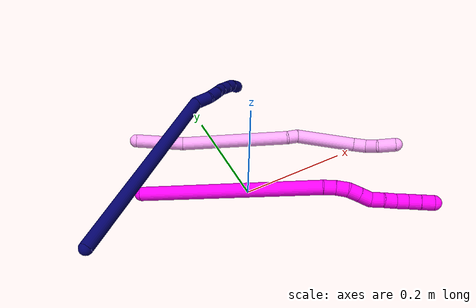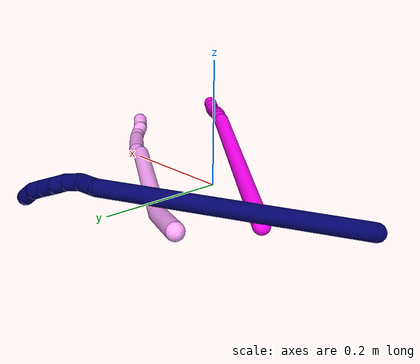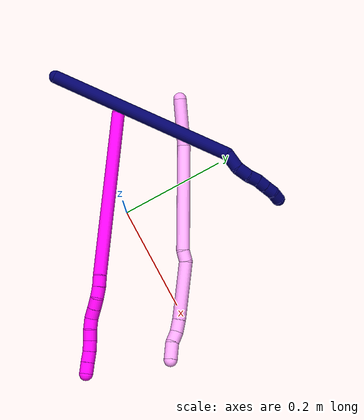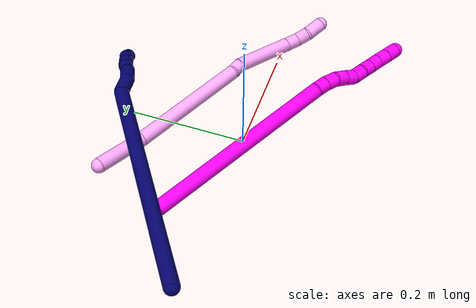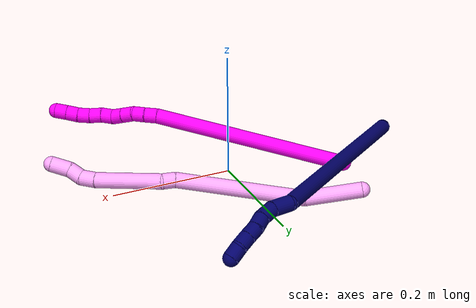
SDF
<sdf version="1.7">
 <world name="default">
  <model name="4">
   <static>0</static>
   <link name="4">
    <collision name="collision-cylinder-e_1_1_4">
     <pose>0.027061 -0.029236 -0.020743 2.18786 0.646628 1.15073</pose>
     <geometry><cylinder><radius>0.0125</radius><length>0.089828</length></cylinder></geometry>
     <surface>
      <friction><ode><mu>1.16</mu><mu2>1.16</mu2><slip1>0</slip1><slip2>0</slip2></ode></friction>
      <contact><ode><kp>1e+06</kp><kd>1</kd><max_vel>0</max_vel><min_depth>0.001</min_depth></ode></contact>
     </surface>
    </collision>
    <visual name="visual-cylinder-e_1_1_4">
     <pose>0.027061 -0.029236 -0.020743 2.18786 0.646628 1.15073</pose>
     <geometry><cylinder><radius>0.0125</radius><length>0.089828</length></cylinder></geometry>
     <material><ambient>1 0.65098 0.996078 1</ambient></material>
    </visual>
    <collision name="collision-cylinder-e_2_4_5">
     <pose>0.115415 -0.103348 -0.109199 2.55633 0.646395 1.67651</pose>
     <geometry><cylinder><radius>0.0125</radius><length>0.203529</length></cylinder></geometry>
     <surface>
      <friction><ode><mu>1.16</mu><mu2>1.16</mu2><slip1>0</slip1><slip2>0</slip2></ode></friction>
      <contact><ode><kp>1e+06</kp><kd>1</kd><max_vel>0</max_vel><min_depth>0.001</min_depth></ode></contact>
     </surface>
    </collision>
    <visual name="visual-cylinder-e_2_4_5">
     <pose>0.115415 -0.103348 -0.109199 2.55633 0.646395 1.67651</pose>
     <geometry><cylinder><radius>0.0125</radius><length>0.203529</length></cylinder></geometry>
     <material><ambient>1 0.65098 0.996078 1</ambient></material>
    </visual>
    <collision name="collision-cylinder-e_3_5_6">
     <pose>0.181151 -0.155236 -0.182867 2.27467 0.449837 0.918215</pose>
     <geometry><cylinder><radius>0.0125</radius><length>0.020429</length></cylinder></geometry>
     <surface>
      <friction><ode><mu>1.16</mu><mu2>1.16</mu2><slip1>0</slip1><slip2>0</slip2></ode></friction>
      <contact><ode><kp>1e+06</kp><kd>1</kd><max_vel>0</max_vel><min_depth>0.001</min_depth></ode></contact>
     </surface>
    </collision>
    <visual name="visual-cylinder-e_3_5_6">
     <pose>0.181151 -0.155236 -0.182867 2.27467 0.449837 0.918215</pose>
     <geometry><cylinder><radius>0.0125</radius><length>0.020429</length></cylinder></geometry>
     <material><ambient>1 0.65098 0.996078 1</ambient></material>
    </visual>
    <collision name="collision-cylinder-e_4_6_7">
     <pose>0.224902 -0.187853 -0.215377 2.37445 0.817122 1.64097</pose>
     <geometry><cylinder><radius>0.0125</radius><length>0.107818</length></cylinder></geometry>
     <surface>
      <friction><ode><mu>1.16</mu><mu2>1.16</mu2><slip1>0</slip1><slip2>0</slip2></ode></friction>
      <contact><ode><kp>1e+06</kp><kd>1</kd><max_vel>0</max_vel><min_depth>0.001</min_depth></ode></contact>
     </surface>
    </collision>
    <visual name="visual-cylinder-e_4_6_7">
     <pose>0.224902 -0.187853 -0.215377 2.37445 0.817122 1.64097</pose>
     <geometry><cylinder><radius>0.0125</radius><length>0.107818</length></cylinder></geometry>
     <material><ambient>1 0.65098 0.996078 1</ambient></material>
    </visual>
    <collision name="collision-cylinder-e_5_7_8">
     <pose>0.273475 -0.21771 -0.248915 2.59457 0.847915 2.0293</pose>
     <geometry><cylinder><radius>0.0125</radius><length>0.024709</length></cylinder></geometry>
     <surface>
      <friction><ode><mu>1.16</mu><mu2>1.16</mu2><slip1>0</slip1><slip2>0</slip2></ode></friction>
      <contact><ode><kp>1e+06</kp><kd>1</kd><max_vel>0</max_vel><min_depth>0.001</min_depth></ode></contact>
     </surface>
    </collision>
    <visual name="visual-cylinder-e_5_7_8">
     <pose>0.273475 -0.21771 -0.248915 2.59457 0.847915 2.0293</pose>
     <geometry><cylinder><radius>0.0125</radius><length>0.024709</length></cylinder></geometry>
     <material><ambient>1 0.65098 0.996078 1</ambient></material>
    </visual>
    <collision name="collision-cylinder-e_6_8_9">
     <pose>0.29034 -0.221708 -0.264193 -3.11113 0.741337 -3.06324</pose>
     <geometry><cylinder><radius>0.0125</radius><length>0.022509</length></cylinder></geometry>
     <surface>
      <friction><ode><mu>1.16</mu><mu2>1.16</mu2><slip1>0</slip1><slip2>0</slip2></ode></friction>
      <contact><ode><kp>1e+06</kp><kd>1</kd><max_vel>0</max_vel><min_depth>0.001</min_depth></ode></contact>
     </surface>
    </collision>
    <visual name="visual-cylinder-e_6_8_9">
     <pose>0.29034 -0.221708 -0.264193 -3.11113 0.741337 -3.06324</pose>
     <geometry><cylinder><radius>0.0125</radius><length>0.022509</length></cylinder></geometry>
     <material><ambient>1 0.65098 0.996078 1</ambient></material>
    </visual>
    <collision name="collision-cylinder-e_7_9_2">
     <pose>0.307447 -0.226246 -0.283878 2.74342 0.655901 2.07109</pose>
     <geometry><cylinder><radius>0.0125</radius><length>0.031178</length></cylinder></geometry>
     <surface>
      <friction><ode><mu>1.16</mu><mu2>1.16</mu2><slip1>0</slip1><slip2>0</slip2></ode></friction>
      <contact><ode><kp>1e+06</kp><kd>1</kd><max_vel>0</max_vel><min_depth>0.001</min_depth></ode></contact>
     </surface>
    </collision>
    <visual name="visual-cylinder-e_7_9_2">
     <pose>0.307447 -0.226246 -0.283878 2.74342 0.655901 2.07109</pose>
     <geometry><cylinder><radius>0.0125</radius><length>0.031178</length></cylinder></geometry>
     <material><ambient>1 0.65098 0.996078 1</ambient></material>
    </visual>
    <collision name="collision-sphere-2">
     <pose>0.316954 -0.231036 -0.295266 0 -0 0</pose>
     <geometry><sphere><radius>0.0125</radius></sphere></geometry>
     <surface>
      <friction><ode><mu>1.16</mu><mu2>1.16</mu2><slip1>0</slip1><slip2>0</slip2></ode></friction>
      <contact><ode><kp>1e+06</kp><kd>1</kd><max_vel>0</max_vel><min_depth>0.001</min_depth></ode></contact>
     </surface>
    </collision>
    <visual name="visual-sphere-2">
     <pose>0.316954 -0.231036 -0.295266 0 -0 0</pose>
     <geometry><sphere><radius>0.0125</radius></sphere></geometry>
     <material><ambient>1 0.65098 0.996078 1</ambient></material>
    </visual>
    <collision name="collision-sphere-9">
     <pose>0.297939 -0.221456 -0.27249 0 -0 0</pose>
     <geometry><sphere><radius>0.0125</radius></sphere></geometry>
     <surface>
      <friction><ode><mu>1.16</mu><mu2>1.16</mu2><slip1>0</slip1><slip2>0</slip2></ode></friction>
      <contact><ode><kp>1e+06</kp><kd>1</kd><max_vel>0</max_vel><min_depth>0.001</min_depth></ode></contact>
     </surface>
    </collision>
    <visual name="visual-sphere-9">
     <pose>0.297939 -0.221456 -0.27249 0 -0 0</pose>
     <geometry><sphere><radius>0.0125</radius></sphere></geometry>
     <material><ambient>1 0.65098 0.996078 1</ambient></material>
    </visual>
    <collision name="collision-sphere-4">
     <pose>0.054121 -0.058472 -0.041485 0 -0 0</pose>
     <geometry><sphere><radius>0.0125</radius></sphere></geometry>
     <surface>
      <friction><ode><mu>1.16</mu><mu2>1.16</mu2><slip1>0</slip1><slip2>0</slip2></ode></friction>
      <contact><ode><kp>1e+06</kp><kd>1</kd><max_vel>0</max_vel><min_depth>0.001</min_depth></ode></contact>
     </surface>
    </collision>
    <visual name="visual-sphere-4">
     <pose>0.054121 -0.058472 -0.041485 0 -0 0</pose>
     <geometry><sphere><radius>0.0125</radius></sphere></geometry>
     <material><ambient>1 0.65098 0.996078 1</ambient></material>
    </visual>
    <collision name="collision-sphere-1">
     <geometry><sphere><radius>0.0125</radius></sphere></geometry>
     <surface>
      <friction><ode><mu>1.16</mu><mu2>1.16</mu2><slip1>0</slip1><slip2>0</slip2></ode></friction>
      <contact><ode><kp>1e+06</kp><kd>1</kd><max_vel>0</max_vel><min_depth>0.001</min_depth></ode></contact>
     </surface>
    </collision>
    <visual name="visual-sphere-1">
     <geometry><sphere><radius>0.0125</radius></sphere></geometry>
     <material><ambient>1 0.65098 0.996078 1</ambient></material>
    </visual>
    <collision name="collision-sphere-8">
     <pose>0.28274 -0.221961 -0.255896 0 -0 0</pose>
     <geometry><sphere><radius>0.0125</radius></sphere></geometry>
     <surface>
      <friction><ode><mu>1.16</mu><mu2>1.16</mu2><slip1>0</slip1><slip2>0</slip2></ode></friction>
      <contact><ode><kp>1e+06</kp><kd>1</kd><max_vel>0</max_vel><min_depth>0.001</min_depth></ode></contact>
     </surface>
    </collision>
    <visual name="visual-sphere-8">
     <pose>0.28274 -0.221961 -0.255896 0 -0 0</pose>
     <geometry><sphere><radius>0.0125</radius></sphere></geometry>
     <material><ambient>1 0.65098 0.996078 1</ambient></material>
    </visual>
    <collision name="collision-sphere-5">
     <pose>0.176709 -0.148223 -0.176914 0 -0 0</pose>
     <geometry><sphere><radius>0.0125</radius></sphere></geometry>
     <surface>
      <friction><ode><mu>1.16</mu><mu2>1.16</mu2><slip1>0</slip1><slip2>0</slip2></ode></friction>
      <contact><ode><kp>1e+06</kp><kd>1</kd><max_vel>0</max_vel><min_depth>0.001</min_depth></ode></contact>
     </surface>
    </collision>
    <visual name="visual-sphere-5">
     <pose>0.176709 -0.148223 -0.176914 0 -0 0</pose>
     <geometry><sphere><radius>0.0125</radius></sphere></geometry>
     <material><ambient>1 0.65098 0.996078 1</ambient></material>
    </visual>
    <collision name="collision-sphere-6">
     <pose>0.185592 -0.162248 -0.18882 0 -0 0</pose>
     <geometry><sphere><radius>0.0125</radius></sphere></geometry>
     <surface>
      <friction><ode><mu>1.16</mu><mu2>1.16</mu2><slip1>0</slip1><slip2>0</slip2></ode></friction>
      <contact><ode><kp>1e+06</kp><kd>1</kd><max_vel>0</max_vel><min_depth>0.001</min_depth></ode></contact>
     </surface>
    </collision>
    <visual name="visual-sphere-6">
     <pose>0.185592 -0.162248 -0.18882 0 -0 0</pose>
     <geometry><sphere><radius>0.0125</radius></sphere></geometry>
     <material><ambient>1 0.65098 0.996078 1</ambient></material>
    </visual>
    <collision name="collision-sphere-7">
     <pose>0.264211 -0.213459 -0.241935 0 -0 0</pose>
     <geometry><sphere><radius>0.0125</radius></sphere></geometry>
     <surface>
      <friction><ode><mu>1.16</mu><mu2>1.16</mu2><slip1>0</slip1><slip2>0</slip2></ode></friction>
      <contact><ode><kp>1e+06</kp><kd>1</kd><max_vel>0</max_vel><min_depth>0.001</min_depth></ode></contact>
     </surface>
    </collision>
    <visual name="visual-sphere-7">
     <pose>0.264211 -0.213459 -0.241935 0 -0 0</pose>
     <geometry><sphere><radius>0.0125</radius></sphere></geometry>
     <material><ambient>1 0.65098 0.996078 1</ambient></material>
    </visual>
    <inertial>
     <pose>0.153497 -0.129019 -0.143987 0 -0 0</pose>
     <mass>0.5</mass>
     <inertia>
      <ixx>0.000668</ixx>
      <ixy>0</ixy>
      <ixz>0</ixz>
      <iyy>0.001049</iyy>
      <iyz>0</iyz>
      <izz>-0.000165</izz>
     </inertia>
    </inertial>
   </link>
   <pose>-0.141067 0.192479 0.026305 2.546 0.286493 -1.35188</pose>
  </model>
  <model name="7">
   <static>0</static>
   <link name="7">
    <collision name="collision-cylinder-e_1_1_4">
     <pose>0.064407 0.07509 -0.151638 -2.6818 0.363696 -1.33191</pose>
     <geometry><cylinder><radius>0.0125</radius><length>0.36211</length></cylinder></geometry>
     <surface>
      <friction><ode><mu>1.16</mu><mu2>1.16</mu2><slip1>0</slip1><slip2>0</slip2></ode></friction>
      <contact><ode><kp>1e+06</kp><kd>1</kd><max_vel>0</max_vel><min_depth>0.001</min_depth></ode></contact>
     </surface>
    </collision>
    <visual name="visual-cylinder-e_1_1_4">
     <pose>0.064407 0.07509 -0.151638 -2.6818 0.363696 -1.33191</pose>
     <geometry><cylinder><radius>0.0125</radius><length>0.36211</length></cylinder></geometry>
     <material><ambient>0.003922 0 0.403922 1</ambient></material>
    </visual>
    <collision name="collision-cylinder-e_2_4_5">
     <pose>0.140977 0.156523 -0.311574 -2.48903 0.861265 -1.87187</pose>
     <geometry><cylinder><radius>0.0125</radius><length>0.032065</length></cylinder></geometry>
     <surface>
      <friction><ode><mu>1.16</mu><mu2>1.16</mu2><slip1>0</slip1><slip2>0</slip2></ode></friction>
      <contact><ode><kp>1e+06</kp><kd>1</kd><max_vel>0</max_vel><min_depth>0.001</min_depth></ode></contact>
     </surface>
    </collision>
    <visual name="visual-cylinder-e_2_4_5">
     <pose>0.140977 0.156523 -0.311574 -2.48903 0.861265 -1.87187</pose>
     <geometry><cylinder><radius>0.0125</radius><length>0.032065</length></cylinder></geometry>
     <material><ambient>0.003922 0 0.403922 1</ambient></material>
    </visual>
    <collision name="collision-cylinder-e_3_5_6">
     <pose>0.160393 0.165926 -0.329991 -2.8479 0.601369 -2.25145</pose>
     <geometry><cylinder><radius>0.0125</radius><length>0.02564</length></cylinder></geometry>
     <surface>
      <friction><ode><mu>1.16</mu><mu2>1.16</mu2><slip1>0</slip1><slip2>0</slip2></ode></friction>
      <contact><ode><kp>1e+06</kp><kd>1</kd><max_vel>0</max_vel><min_depth>0.001</min_depth></ode></contact>
     </surface>
    </collision>
    <visual name="visual-cylinder-e_3_5_6">
     <pose>0.160393 0.165926 -0.329991 -2.8479 0.601369 -2.25145</pose>
     <geometry><cylinder><radius>0.0125</radius><length>0.02564</length></cylinder></geometry>
     <material><ambient>0.003922 0 0.403922 1</ambient></material>
    </visual>
    <collision name="collision-cylinder-e_4_6_7">
     <pose>0.171999 0.169355 -0.34916 -3.10085 0.447946 -2.9632</pose>
     <geometry><cylinder><radius>0.0125</radius><length>0.020098</length></cylinder></geometry>
     <surface>
      <friction><ode><mu>1.16</mu><mu2>1.16</mu2><slip1>0</slip1><slip2>0</slip2></ode></friction>
      <contact><ode><kp>1e+06</kp><kd>1</kd><max_vel>0</max_vel><min_depth>0.001</min_depth></ode></contact>
     </surface>
    </collision>
    <visual name="visual-cylinder-e_4_6_7">
     <pose>0.171999 0.169355 -0.34916 -3.10085 0.447946 -2.9632</pose>
     <geometry><cylinder><radius>0.0125</radius><length>0.020098</length></cylinder></geometry>
     <material><ambient>0.003922 0 0.403922 1</ambient></material>
    </visual>
    <collision name="collision-cylinder-e_5_7_8">
     <pose>0.182534 0.170332 -0.366048 -3.06416 0.666434 -2.91869</pose>
     <geometry><cylinder><radius>0.0125</radius><length>0.020003</length></cylinder></geometry>
     <surface>
      <friction><ode><mu>1.16</mu><mu2>1.16</mu2><slip1>0</slip1><slip2>0</slip2></ode></friction>
      <contact><ode><kp>1e+06</kp><kd>1</kd><max_vel>0</max_vel><min_depth>0.001</min_depth></ode></contact>
     </surface>
    </collision>
    <visual name="visual-cylinder-e_5_7_8">
     <pose>0.182534 0.170332 -0.366048 -3.06416 0.666434 -2.91869</pose>
     <geometry><cylinder><radius>0.0125</radius><length>0.020003</length></cylinder></geometry>
     <material><ambient>0.003922 0 0.403922 1</ambient></material>
    </visual>
    <collision name="collision-cylinder-e_6_8_9">
     <pose>0.194747 0.171206 -0.381895 -3.10835 0.645113 -3.0422</pose>
     <geometry><cylinder><radius>0.0125</radius><length>0.020057</length></cylinder></geometry>
     <surface>
      <friction><ode><mu>1.16</mu><mu2>1.16</mu2><slip1>0</slip1><slip2>0</slip2></ode></friction>
      <contact><ode><kp>1e+06</kp><kd>1</kd><max_vel>0</max_vel><min_depth>0.001</min_depth></ode></contact>
     </surface>
    </collision>
    <visual name="visual-cylinder-e_6_8_9">
     <pose>0.194747 0.171206 -0.381895 -3.10835 0.645113 -3.0422</pose>
     <geometry><cylinder><radius>0.0125</radius><length>0.020057</length></cylinder></geometry>
     <material><ambient>0.003922 0 0.403922 1</ambient></material>
    </visual>
    <collision name="collision-cylinder-e_7_9_2">
     <pose>0.207925 0.169062 -0.396489 2.79066 0.794957 2.34243</pose>
     <geometry><cylinder><radius>0.0125</radius><length>0.020027</length></cylinder></geometry>
     <surface>
      <friction><ode><mu>1.16</mu><mu2>1.16</mu2><slip1>0</slip1><slip2>0</slip2></ode></friction>
      <contact><ode><kp>1e+06</kp><kd>1</kd><max_vel>0</max_vel><min_depth>0.001</min_depth></ode></contact>
     </surface>
    </collision>
    <visual name="visual-cylinder-e_7_9_2">
     <pose>0.207925 0.169062 -0.396489 2.79066 0.794957 2.34243</pose>
     <geometry><cylinder><radius>0.0125</radius><length>0.020027</length></cylinder></geometry>
     <material><ambient>0.003922 0 0.403922 1</ambient></material>
    </visual>
    <collision name="collision-sphere-2">
     <pose>0.215073 0.166651 -0.403074 0 -0 0</pose>
     <geometry><sphere><radius>0.0125</radius></sphere></geometry>
     <surface>
      <friction><ode><mu>1.16</mu><mu2>1.16</mu2><slip1>0</slip1><slip2>0</slip2></ode></friction>
      <contact><ode><kp>1e+06</kp><kd>1</kd><max_vel>0</max_vel><min_depth>0.001</min_depth></ode></contact>
     </surface>
    </collision>
    <visual name="visual-sphere-2">
     <pose>0.215073 0.166651 -0.403074 0 -0 0</pose>
     <geometry><sphere><radius>0.0125</radius></sphere></geometry>
     <material><ambient>0.003922 0 0.403922 1</ambient></material>
    </visual>
    <collision name="collision-sphere-9">
     <pose>0.200778 0.171473 -0.389904 0 -0 0</pose>
     <geometry><sphere><radius>0.0125</radius></sphere></geometry>
     <surface>
      <friction><ode><mu>1.16</mu><mu2>1.16</mu2><slip1>0</slip1><slip2>0</slip2></ode></friction>
      <contact><ode><kp>1e+06</kp><kd>1</kd><max_vel>0</max_vel><min_depth>0.001</min_depth></ode></contact>
     </surface>
    </collision>
    <visual name="visual-sphere-9">
     <pose>0.200778 0.171473 -0.389904 0 -0 0</pose>
     <geometry><sphere><radius>0.0125</radius></sphere></geometry>
     <material><ambient>0.003922 0 0.403922 1</ambient></material>
    </visual>
    <collision name="collision-sphere-4">
     <pose>0.128814 0.150181 -0.303276 0 -0 0</pose>
     <geometry><sphere><radius>0.0125</radius></sphere></geometry>
     <surface>
      <friction><ode><mu>1.16</mu><mu2>1.16</mu2><slip1>0</slip1><slip2>0</slip2></ode></friction>
      <contact><ode><kp>1e+06</kp><kd>1</kd><max_vel>0</max_vel><min_depth>0.001</min_depth></ode></contact>
     </surface>
    </collision>
    <visual name="visual-sphere-4">
     <pose>0.128814 0.150181 -0.303276 0 -0 0</pose>
     <geometry><sphere><radius>0.0125</radius></sphere></geometry>
     <material><ambient>0.003922 0 0.403922 1</ambient></material>
    </visual>
    <collision name="collision-sphere-1">
     <geometry><sphere><radius>0.0125</radius></sphere></geometry>
     <surface>
      <friction><ode><mu>1.16</mu><mu2>1.16</mu2><slip1>0</slip1><slip2>0</slip2></ode></friction>
      <contact><ode><kp>1e+06</kp><kd>1</kd><max_vel>0</max_vel><min_depth>0.001</min_depth></ode></contact>
     </surface>
    </collision>
    <visual name="visual-sphere-1">
     <geometry><sphere><radius>0.0125</radius></sphere></geometry>
     <material><ambient>0.003922 0 0.403922 1</ambient></material>
    </visual>
    <collision name="collision-sphere-8">
     <pose>0.188717 0.17094 -0.373886 0 -0 0</pose>
     <geometry><sphere><radius>0.0125</radius></sphere></geometry>
     <surface>
      <friction><ode><mu>1.16</mu><mu2>1.16</mu2><slip1>0</slip1><slip2>0</slip2></ode></friction>
      <contact><ode><kp>1e+06</kp><kd>1</kd><max_vel>0</max_vel><min_depth>0.001</min_depth></ode></contact>
     </surface>
    </collision>
    <visual name="visual-sphere-8">
     <pose>0.188717 0.17094 -0.373886 0 -0 0</pose>
     <geometry><sphere><radius>0.0125</radius></sphere></geometry>
     <material><ambient>0.003922 0 0.403922 1</ambient></material>
    </visual>
    <collision name="collision-sphere-5">
     <pose>0.15314 0.162866 -0.319873 0 -0 0</pose>
     <geometry><sphere><radius>0.0125</radius></sphere></geometry>
     <surface>
      <friction><ode><mu>1.16</mu><mu2>1.16</mu2><slip1>0</slip1><slip2>0</slip2></ode></friction>
      <contact><ode><kp>1e+06</kp><kd>1</kd><max_vel>0</max_vel><min_depth>0.001</min_depth></ode></contact>
     </surface>
    </collision>
    <visual name="visual-sphere-5">
     <pose>0.15314 0.162866 -0.319873 0 -0 0</pose>
     <geometry><sphere><radius>0.0125</radius></sphere></geometry>
     <material><ambient>0.003922 0 0.403922 1</ambient></material>
    </visual>
    <collision name="collision-sphere-6">
     <pose>0.167647 0.168986 -0.34011 0 -0 0</pose>
     <geometry><sphere><radius>0.0125</radius></sphere></geometry>
     <surface>
      <friction><ode><mu>1.16</mu><mu2>1.16</mu2><slip1>0</slip1><slip2>0</slip2></ode></friction>
      <contact><ode><kp>1e+06</kp><kd>1</kd><max_vel>0</max_vel><min_depth>0.001</min_depth></ode></contact>
     </surface>
    </collision>
    <visual name="visual-sphere-6">
     <pose>0.167647 0.168986 -0.34011 0 -0 0</pose>
     <geometry><sphere><radius>0.0125</radius></sphere></geometry>
     <material><ambient>0.003922 0 0.403922 1</ambient></material>
    </visual>
    <collision name="collision-sphere-7">
     <pose>0.176351 0.169724 -0.35821 0 -0 0</pose>
     <geometry><sphere><radius>0.0125</radius></sphere></geometry>
     <surface>
      <friction><ode><mu>1.16</mu><mu2>1.16</mu2><slip1>0</slip1><slip2>0</slip2></ode></friction>
      <contact><ode><kp>1e+06</kp><kd>1</kd><max_vel>0</max_vel><min_depth>0.001</min_depth></ode></contact>
     </surface>
    </collision>
    <visual name="visual-sphere-7">
     <pose>0.176351 0.169724 -0.35821 0 -0 0</pose>
     <geometry><sphere><radius>0.0125</radius></sphere></geometry>
     <material><ambient>0.003922 0 0.403922 1</ambient></material>
    </visual>
    <inertial>
     <pose>0.094267 0.10019 -0.206602 0 -0 0</pose>
     <mass>0.5</mass>
     <inertia>
      <ixx>-0.002721</ixx>
      <ixy>0</ixy>
      <ixz>0</ixz>
      <iyy>-0.00382</iyy>
      <iyz>0</iyz>
      <izz>-0.003101</izz>
     </inertia>
    </inertial>
   </link>
   <pose>-0.294036 0.004027 0.023033 1.32974 0.347409 -0.523331</pose>
  </model>
  <model name="10">
   <static>0</static>
   <link name="10">
    <collision name="collision-cylinder-e_1_1_4">
     <pose>-0.01246 -0.022015 0.157911 0.138521 -0.077992 -0.005413</pose>
     <geometry><cylinder><radius>0.0125</radius><length>0.319849</length></cylinder></geometry>
     <surface>
      <friction><ode><mu>1.16</mu><mu2>1.16</mu2><slip1>0</slip1><slip2>0</slip2></ode></friction>
      <contact><ode><kp>1e+06</kp><kd>1</kd><max_vel>0</max_vel><min_depth>0.001</min_depth></ode></contact>
     </surface>
    </collision>
    <visual name="visual-cylinder-e_1_1_4">
     <pose>-0.01246 -0.022015 0.157911 0.138521 -0.077992 -0.005413</pose>
     <geometry><cylinder><radius>0.0125</radius><length>0.319849</length></cylinder></geometry>
     <material><ambient>1 0 0.964706 1</ambient></material>
    </visual>
    <collision name="collision-cylinder-e_2_4_5">
     <pose>-0.024798 -0.044041 0.325882 0.001099 0.012176 7e-06</pose>
     <geometry><cylinder><radius>0.0125</radius><length>0.020121</length></cylinder></geometry>
     <surface>
      <friction><ode><mu>1.16</mu><mu2>1.16</mu2><slip1>0</slip1><slip2>0</slip2></ode></friction>
      <contact><ode><kp>1e+06</kp><kd>1</kd><max_vel>0</max_vel><min_depth>0.001</min_depth></ode></contact>
     </surface>
    </collision>
    <visual name="visual-cylinder-e_2_4_5">
     <pose>-0.024798 -0.044041 0.325882 0.001099 0.012176 7e-06</pose>
     <geometry><cylinder><radius>0.0125</radius><length>0.020121</length></cylinder></geometry>
     <material><ambient>1 0 0.964706 1</ambient></material>
    </visual>
    <collision name="collision-cylinder-e_3_5_6">
     <pose>-0.023364 -0.044741 0.345846 0.069494 0.131296 0.004571</pose>
     <geometry><cylinder><radius>0.0125</radius><length>0.020029</length></cylinder></geometry>
     <surface>
      <friction><ode><mu>1.16</mu><mu2>1.16</mu2><slip1>0</slip1><slip2>0</slip2></ode></friction>
      <contact><ode><kp>1e+06</kp><kd>1</kd><max_vel>0</max_vel><min_depth>0.001</min_depth></ode></contact>
     </surface>
    </collision>
    <visual name="visual-cylinder-e_3_5_6">
     <pose>-0.023364 -0.044741 0.345846 0.069494 0.131296 0.004571</pose>
     <geometry><cylinder><radius>0.0125</radius><length>0.020029</length></cylinder></geometry>
     <material><ambient>1 0 0.964706 1</ambient></material>
    </visual>
    <collision name="collision-cylinder-e_4_6_7">
     <pose>-0.018259 -0.044621 0.364967 -0.087621 0.389115 -0.017276</pose>
     <geometry><cylinder><radius>0.0125</radius><length>0.020001</length></cylinder></geometry>
     <surface>
      <friction><ode><mu>1.16</mu><mu2>1.16</mu2><slip1>0</slip1><slip2>0</slip2></ode></friction>
      <contact><ode><kp>1e+06</kp><kd>1</kd><max_vel>0</max_vel><min_depth>0.001</min_depth></ode></contact>
     </surface>
    </collision>
    <visual name="visual-cylinder-e_4_6_7">
     <pose>-0.018259 -0.044621 0.364967 -0.087621 0.389115 -0.017276</pose>
     <geometry><cylinder><radius>0.0125</radius><length>0.020001</length></cylinder></geometry>
     <material><ambient>1 0 0.964706 1</ambient></material>
    </visual>
    <collision name="collision-cylinder-e_5_7_8">
     <pose>-0.010376 -0.043163 0.383287 -0.071156 0.421333 -0.015222</pose>
     <geometry><cylinder><radius>0.0125</radius><length>0.02</length></cylinder></geometry>
     <surface>
      <friction><ode><mu>1.16</mu><mu2>1.16</mu2><slip1>0</slip1><slip2>0</slip2></ode></friction>
      <contact><ode><kp>1e+06</kp><kd>1</kd><max_vel>0</max_vel><min_depth>0.001</min_depth></ode></contact>
     </surface>
    </collision>
    <visual name="visual-cylinder-e_5_7_8">
     <pose>-0.010376 -0.043163 0.383287 -0.071156 0.421333 -0.015222</pose>
     <geometry><cylinder><radius>0.0125</radius><length>0.02</length></cylinder></geometry>
     <material><ambient>1 0 0.964706 1</ambient></material>
    </visual>
    <collision name="collision-cylinder-e_6_8_9">
     <pose>-0.006264 -0.043204 0.402366 0.069082 0.002214 7.6e-05</pose>
     <geometry><cylinder><radius>0.0125</radius><length>0.02</length></cylinder></geometry>
     <surface>
      <friction><ode><mu>1.16</mu><mu2>1.16</mu2><slip1>0</slip1><slip2>0</slip2></ode></friction>
      <contact><ode><kp>1e+06</kp><kd>1</kd><max_vel>0</max_vel><min_depth>0.001</min_depth></ode></contact>
     </surface>
    </collision>
    <visual name="visual-cylinder-e_6_8_9">
     <pose>-0.006264 -0.043204 0.402366 0.069082 0.002214 7.6e-05</pose>
     <geometry><cylinder><radius>0.0125</radius><length>0.02</length></cylinder></geometry>
     <material><ambient>1 0 0.964706 1</ambient></material>
    </visual>
    <collision name="collision-cylinder-e_7_9_10">
     <pose>-0.00546 -0.042544 0.42222 -0.135897 0.07821 -0.005325</pose>
     <geometry><cylinder><radius>0.0125</radius><length>0.02</length></cylinder></geometry>
     <surface>
      <friction><ode><mu>1.16</mu><mu2>1.16</mu2><slip1>0</slip1><slip2>0</slip2></ode></friction>
      <contact><ode><kp>1e+06</kp><kd>1</kd><max_vel>0</max_vel><min_depth>0.001</min_depth></ode></contact>
     </surface>
    </collision>
    <visual name="visual-cylinder-e_7_9_10">
     <pose>-0.00546 -0.042544 0.42222 -0.135897 0.07821 -0.005325</pose>
     <geometry><cylinder><radius>0.0125</radius><length>0.02</length></cylinder></geometry>
     <material><ambient>1 0 0.964706 1</ambient></material>
    </visual>
    <collision name="collision-cylinder-e_8_10_11">
     <pose>-0.004518 -0.040991 0.442094 -0.02023 0.016071 -0.000163</pose>
     <geometry><cylinder><radius>0.0125</radius><length>0.02</length></cylinder></geometry>
     <surface>
      <friction><ode><mu>1.16</mu><mu2>1.16</mu2><slip1>0</slip1><slip2>0</slip2></ode></friction>
      <contact><ode><kp>1e+06</kp><kd>1</kd><max_vel>0</max_vel><min_depth>0.001</min_depth></ode></contact>
     </surface>
    </collision>
    <visual name="visual-cylinder-e_8_10_11">
     <pose>-0.004518 -0.040991 0.442094 -0.02023 0.016071 -0.000163</pose>
     <geometry><cylinder><radius>0.0125</radius><length>0.02</length></cylinder></geometry>
     <material><ambient>1 0 0.964706 1</ambient></material>
    </visual>
    <collision name="collision-cylinder-e_9_11_12">
     <pose>-0.004218 -0.042085 0.462005 0.13001 0.013925 0.000906</pose>
     <geometry><cylinder><radius>0.0125</radius><length>0.02</length></cylinder></geometry>
     <surface>
      <friction><ode><mu>1.16</mu><mu2>1.16</mu2><slip1>0</slip1><slip2>0</slip2></ode></friction>
      <contact><ode><kp>1e+06</kp><kd>1</kd><max_vel>0</max_vel><min_depth>0.001</min_depth></ode></contact>
     </surface>
    </collision>
    <visual name="visual-cylinder-e_9_11_12">
     <pose>-0.004218 -0.042085 0.462005 0.13001 0.013925 0.000906</pose>
     <geometry><cylinder><radius>0.0125</radius><length>0.02</length></cylinder></geometry>
     <material><ambient>1 0 0.964706 1</ambient></material>
    </visual>
    <collision name="collision-cylinder-e_10_12_2">
     <pose>-0.004014 -0.044324 0.481875 0.094396 0.006494 0.000307</pose>
     <geometry><cylinder><radius>0.0125</radius><length>0.02</length></cylinder></geometry>
     <surface>
      <friction><ode><mu>1.16</mu><mu2>1.16</mu2><slip1>0</slip1><slip2>0</slip2></ode></friction>
      <contact><ode><kp>1e+06</kp><kd>1</kd><max_vel>0</max_vel><min_depth>0.001</min_depth></ode></contact>
     </surface>
    </collision>
    <visual name="visual-cylinder-e_10_12_2">
     <pose>-0.004014 -0.044324 0.481875 0.094396 0.006494 0.000307</pose>
     <geometry><cylinder><radius>0.0125</radius><length>0.02</length></cylinder></geometry>
     <material><ambient>1 0 0.964706 1</ambient></material>
    </visual>
    <collision name="collision-sphere-2">
     <pose>-0.003949 -0.045266 0.49183 0 -0 0</pose>
     <geometry><sphere><radius>0.0125</radius></sphere></geometry>
     <surface>
      <friction><ode><mu>1.16</mu><mu2>1.16</mu2><slip1>0</slip1><slip2>0</slip2></ode></friction>
      <contact><ode><kp>1e+06</kp><kd>1</kd><max_vel>0</max_vel><min_depth>0.001</min_depth></ode></contact>
     </surface>
    </collision>
    <visual name="visual-sphere-2">
     <pose>-0.003949 -0.045266 0.49183 0 -0 0</pose>
     <geometry><sphere><radius>0.0125</radius></sphere></geometry>
     <material><ambient>1 0 0.964706 1</ambient></material>
    </visual>
    <collision name="collision-sphere-12">
     <pose>-0.004079 -0.043381 0.47192 0 -0 0</pose>
     <geometry><sphere><radius>0.0125</radius></sphere></geometry>
     <surface>
      <friction><ode><mu>1.16</mu><mu2>1.16</mu2><slip1>0</slip1><slip2>0</slip2></ode></friction>
      <contact><ode><kp>1e+06</kp><kd>1</kd><max_vel>0</max_vel><min_depth>0.001</min_depth></ode></contact>
     </surface>
    </collision>
    <visual name="visual-sphere-12">
     <pose>-0.004079 -0.043381 0.47192 0 -0 0</pose>
     <geometry><sphere><radius>0.0125</radius></sphere></geometry>
     <material><ambient>1 0 0.964706 1</ambient></material>
    </visual>
    <collision name="collision-sphere-11">
     <pose>-0.004358 -0.040789 0.45209 0 -0 0</pose>
     <geometry><sphere><radius>0.0125</radius></sphere></geometry>
     <surface>
      <friction><ode><mu>1.16</mu><mu2>1.16</mu2><slip1>0</slip1><slip2>0</slip2></ode></friction>
      <contact><ode><kp>1e+06</kp><kd>1</kd><max_vel>0</max_vel><min_depth>0.001</min_depth></ode></contact>
     </surface>
    </collision>
    <visual name="visual-sphere-11">
     <pose>-0.004358 -0.040789 0.45209 0 -0 0</pose>
     <geometry><sphere><radius>0.0125</radius></sphere></geometry>
     <material><ambient>1 0 0.964706 1</ambient></material>
    </visual>
    <collision name="collision-sphere-10">
     <pose>-0.004679 -0.041193 0.432097 0 -0 0</pose>
     <geometry><sphere><radius>0.0125</radius></sphere></geometry>
     <surface>
      <friction><ode><mu>1.16</mu><mu2>1.16</mu2><slip1>0</slip1><slip2>0</slip2></ode></friction>
      <contact><ode><kp>1e+06</kp><kd>1</kd><max_vel>0</max_vel><min_depth>0.001</min_depth></ode></contact>
     </surface>
    </collision>
    <visual name="visual-sphere-10">
     <pose>-0.004679 -0.041193 0.432097 0 -0 0</pose>
     <geometry><sphere><radius>0.0125</radius></sphere></geometry>
     <material><ambient>1 0 0.964706 1</ambient></material>
    </visual>
    <collision name="collision-sphere-9">
     <pose>-0.006242 -0.043894 0.412342 0 -0 0</pose>
     <geometry><sphere><radius>0.0125</radius></sphere></geometry>
     <surface>
      <friction><ode><mu>1.16</mu><mu2>1.16</mu2><slip1>0</slip1><slip2>0</slip2></ode></friction>
      <contact><ode><kp>1e+06</kp><kd>1</kd><max_vel>0</max_vel><min_depth>0.001</min_depth></ode></contact>
     </surface>
    </collision>
    <visual name="visual-sphere-9">
     <pose>-0.006242 -0.043894 0.412342 0 -0 0</pose>
     <geometry><sphere><radius>0.0125</radius></sphere></geometry>
     <material><ambient>1 0 0.964706 1</ambient></material>
    </visual>
    <collision name="collision-sphere-4">
     <pose>-0.024921 -0.04403 0.315822 0 -0 0</pose>
     <geometry><sphere><radius>0.0125</radius></sphere></geometry>
     <surface>
      <friction><ode><mu>1.16</mu><mu2>1.16</mu2><slip1>0</slip1><slip2>0</slip2></ode></friction>
      <contact><ode><kp>1e+06</kp><kd>1</kd><max_vel>0</max_vel><min_depth>0.001</min_depth></ode></contact>
     </surface>
    </collision>
    <visual name="visual-sphere-4">
     <pose>-0.024921 -0.04403 0.315822 0 -0 0</pose>
     <geometry><sphere><radius>0.0125</radius></sphere></geometry>
     <material><ambient>1 0 0.964706 1</ambient></material>
    </visual>
    <collision name="collision-sphere-1">
     <geometry><sphere><radius>0.0125</radius></sphere></geometry>
     <surface>
      <friction><ode><mu>1.16</mu><mu2>1.16</mu2><slip1>0</slip1><slip2>0</slip2></ode></friction>
      <contact><ode><kp>1e+06</kp><kd>1</kd><max_vel>0</max_vel><min_depth>0.001</min_depth></ode></contact>
     </surface>
    </collision>
    <visual name="visual-sphere-1">
     <geometry><sphere><radius>0.0125</radius></sphere></geometry>
     <material><ambient>1 0 0.964706 1</ambient></material>
    </visual>
    <collision name="collision-sphere-8">
     <pose>-0.006286 -0.042514 0.39239 0 -0 0</pose>
     <geometry><sphere><radius>0.0125</radius></sphere></geometry>
     <surface>
      <friction><ode><mu>1.16</mu><mu2>1.16</mu2><slip1>0</slip1><slip2>0</slip2></ode></friction>
      <contact><ode><kp>1e+06</kp><kd>1</kd><max_vel>0</max_vel><min_depth>0.001</min_depth></ode></contact>
     </surface>
    </collision>
    <visual name="visual-sphere-8">
     <pose>-0.006286 -0.042514 0.39239 0 -0 0</pose>
     <geometry><sphere><radius>0.0125</radius></sphere></geometry>
     <material><ambient>1 0 0.964706 1</ambient></material>
    </visual>
    <collision name="collision-sphere-5">
     <pose>-0.024676 -0.044052 0.335942 0 -0 0</pose>
     <geometry><sphere><radius>0.0125</radius></sphere></geometry>
     <surface>
      <friction><ode><mu>1.16</mu><mu2>1.16</mu2><slip1>0</slip1><slip2>0</slip2></ode></friction>
      <contact><ode><kp>1e+06</kp><kd>1</kd><max_vel>0</max_vel><min_depth>0.001</min_depth></ode></contact>
     </surface>
    </collision>
    <visual name="visual-sphere-5">
     <pose>-0.024676 -0.044052 0.335942 0 -0 0</pose>
     <geometry><sphere><radius>0.0125</radius></sphere></geometry>
     <material><ambient>1 0 0.964706 1</ambient></material>
    </visual>
    <collision name="collision-sphere-6">
     <pose>-0.022053 -0.045431 0.35575 0 -0 0</pose>
     <geometry><sphere><radius>0.0125</radius></sphere></geometry>
     <surface>
      <friction><ode><mu>1.16</mu><mu2>1.16</mu2><slip1>0</slip1><slip2>0</slip2></ode></friction>
      <contact><ode><kp>1e+06</kp><kd>1</kd><max_vel>0</max_vel><min_depth>0.001</min_depth></ode></contact>
     </surface>
    </collision>
    <visual name="visual-sphere-6">
     <pose>-0.022053 -0.045431 0.35575 0 -0 0</pose>
     <geometry><sphere><radius>0.0125</radius></sphere></geometry>
     <material><ambient>1 0 0.964706 1</ambient></material>
    </visual>
    <collision name="collision-sphere-7">
     <pose>-0.014466 -0.043811 0.374185 0 -0 0</pose>
     <geometry><sphere><radius>0.0125</radius></sphere></geometry>
     <surface>
      <friction><ode><mu>1.16</mu><mu2>1.16</mu2><slip1>0</slip1><slip2>0</slip2></ode></friction>
      <contact><ode><kp>1e+06</kp><kd>1</kd><max_vel>0</max_vel><min_depth>0.001</min_depth></ode></contact>
     </surface>
    </collision>
    <visual name="visual-sphere-7">
     <pose>-0.014466 -0.043811 0.374185 0 -0 0</pose>
     <geometry><sphere><radius>0.0125</radius></sphere></geometry>
     <material><ambient>1 0 0.964706 1</ambient></material>
    </visual>
    <inertial>
     <pose>-0.012029 -0.029685 0.246337 0 -0 0</pose>
     <mass>0.5</mass>
     <inertia>
      <ixx>0.002729</ixx>
      <ixy>0</ixy>
      <ixz>0</ixz>
      <iyy>0.002708</iyy>
      <iyz>0</iyz>
      <izz>0.000628</izz>
     </inertia>
    </inertial>
   </link>
   <pose>-0.174919 0.076299 0.011493 -1.49851 0.804784 -2.06366</pose>
  </model>
 </world>
</sdf>
